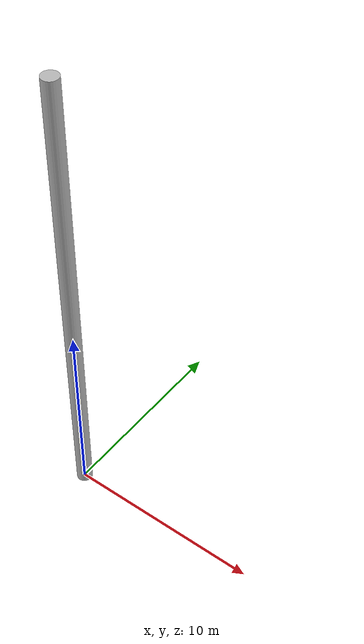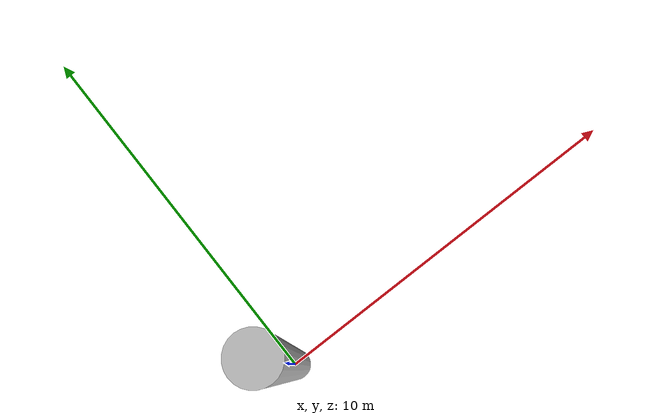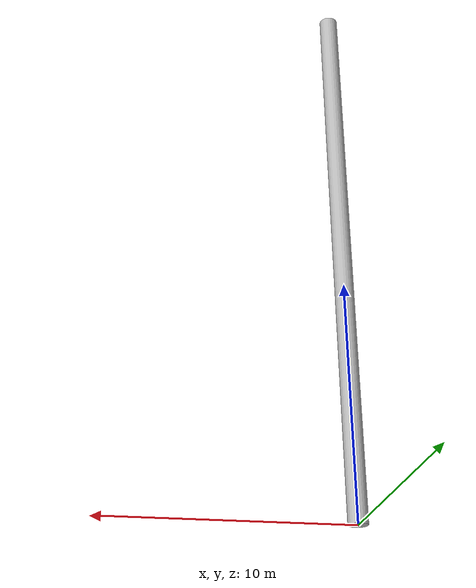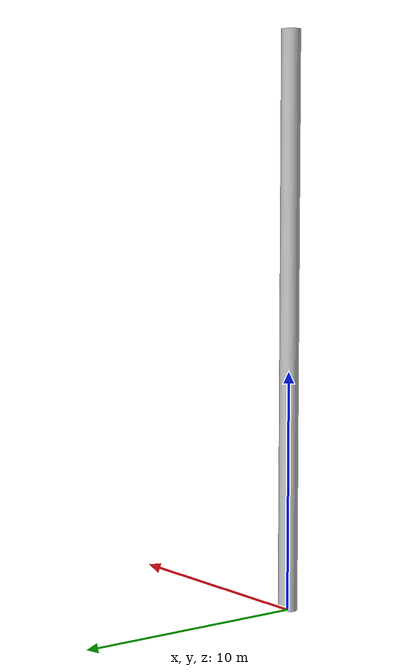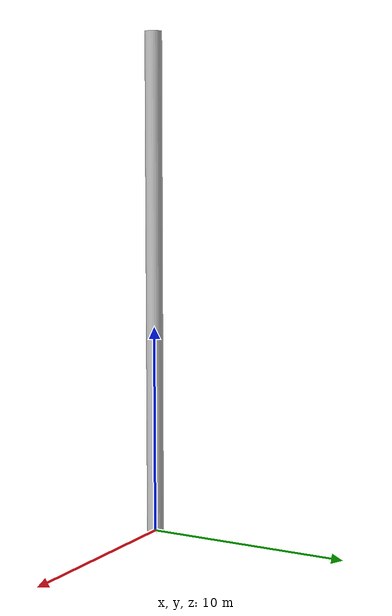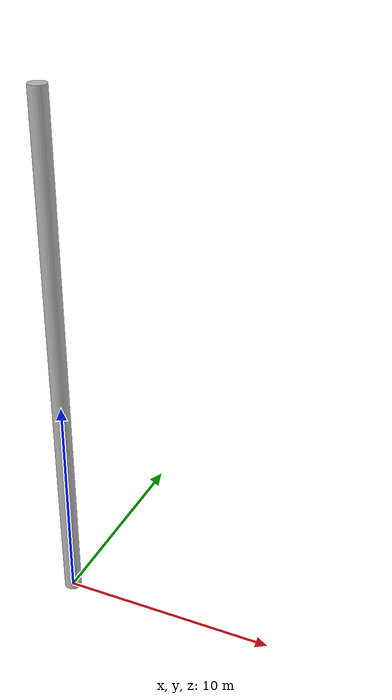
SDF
<?xml version="1.0"?>
<sdf version="1.6">
  <model name="beam">
    <static>true</static>
    <link name="link">
      <visual name="visual">
        <pose>0 0 0 0 0 0</pose>
        <geometry>
          <mesh>
            <uri>file://MESH_DIR/beam.stl</uri>
          </mesh>
        </geometry>
        <material>
          <ambient>COLOR_R COLOR_G COLOR_B 0.55</ambient>
          <diffuse>COLOR_R COLOR_G COLOR_B 0.55</diffuse>
          <specular>0.2 0.2 0.2 1.0</specular>
          <emissive>COLOR_R COLOR_G COLOR_B 1.0</emissive>
        </material>
        <cast_shadows>false</cast_shadows>
      </visual>
    </link>
  </model>
</sdf>
